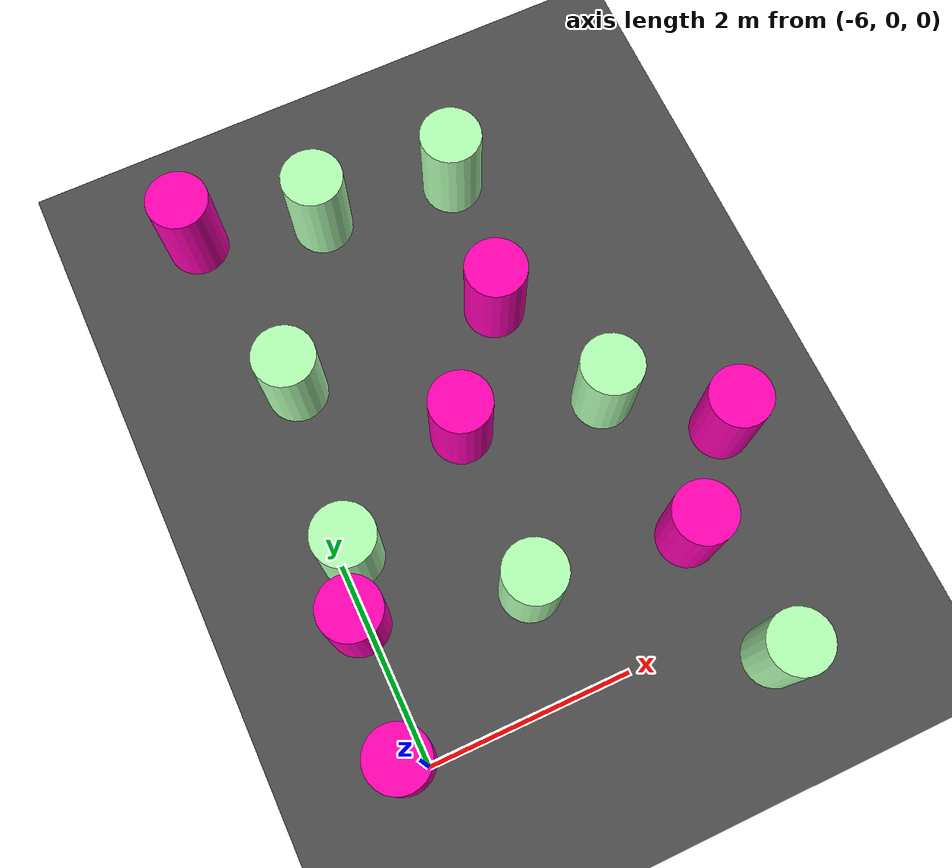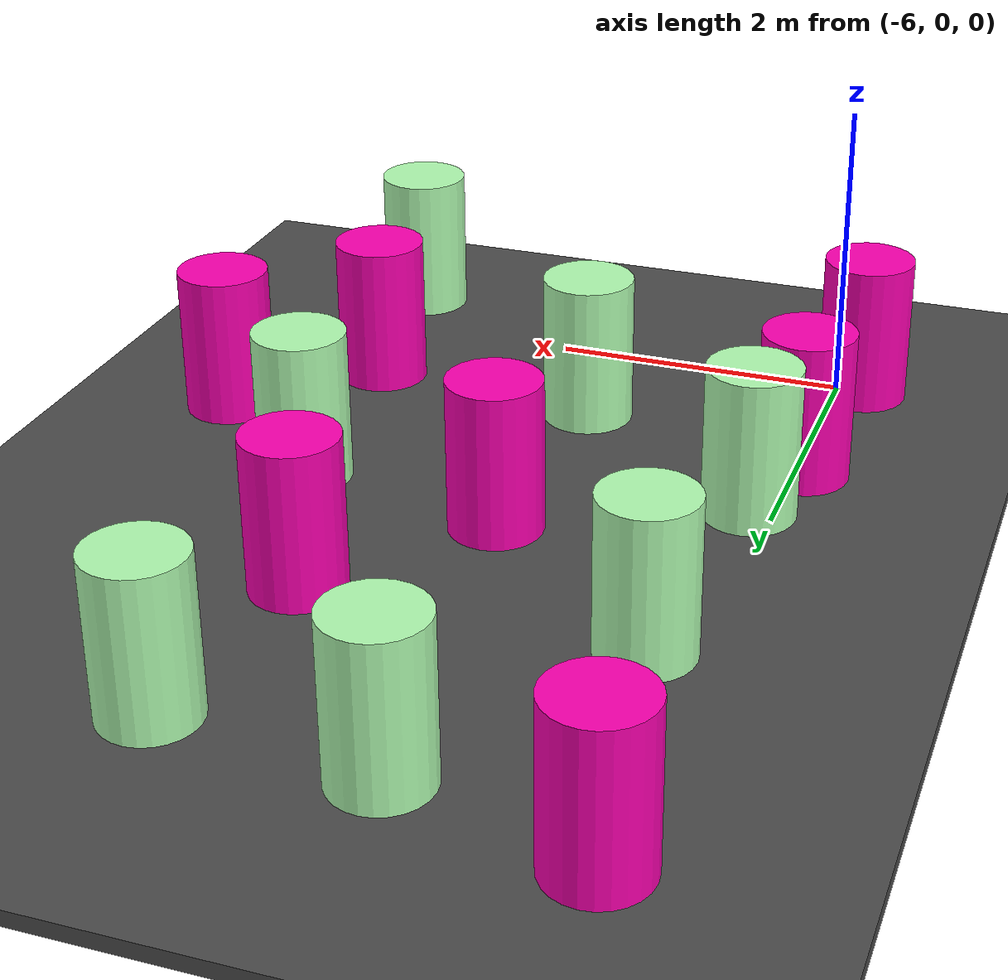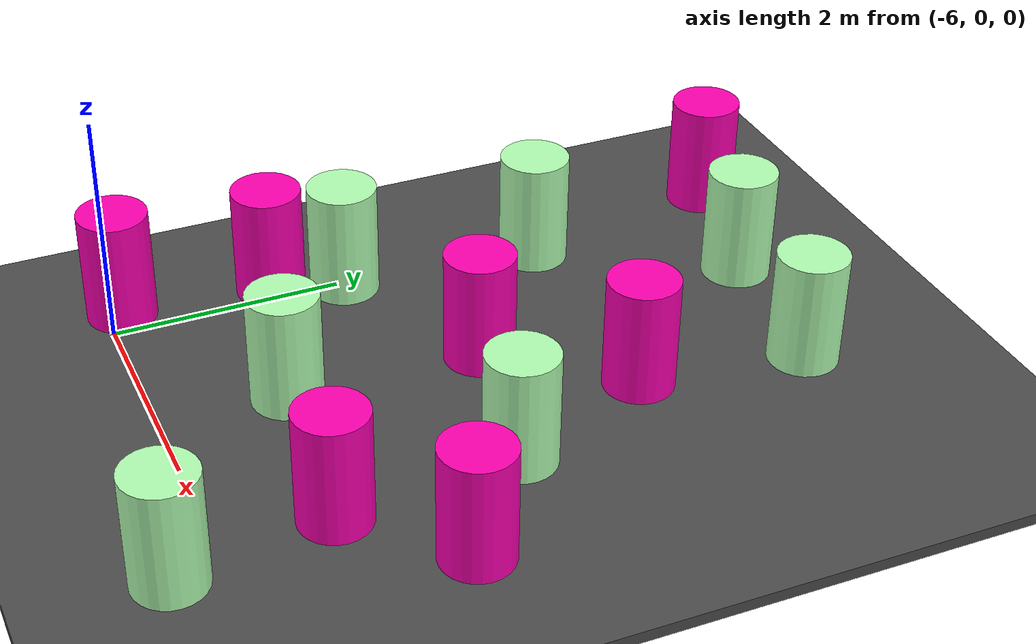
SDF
<sdf version="1.6">
 <world name="default">
  <model name="ground_plane">
   <static>1</static>
   <link name="link">
    <collision name="collision">
     <geometry><plane><normal>0 0 1</normal><size>100 100</size></plane></geometry>
     <surface>
      <contact><collide_bitmask>65535</collide_bitmask></contact>
      <friction><ode><mu>100</mu><mu2>50</mu2></ode></friction>
     </surface>
    </collision>
    <visual name="visual">
     <cast_shadows>0</cast_shadows>
     <geometry><plane><normal>0 0 1</normal><size>100 100</size></plane></geometry>
     <material>
      <script><uri>file://media/materials/scripts/gazebo.material</uri><name>Gazebo/Grey</name></script>
     </material>
    </visual>
   </link>
  </model>
  <model name="asphalt_plane">
   <static>1</static>
   <link name="link">
    <collision name="collision"><geometry><box><size>20 20 0.1</size></box></geometry></collision>
    <visual name="visual">
     <cast_shadows>0</cast_shadows>
     <geometry><box><size>20 20 0.1</size></box></geometry>
     <material>
      <script>
       <uri>model://asphalt_plane/materials/scripts</uri>
       <uri>model://asphalt_plane/materials/textures</uri>
       <name>vrc/asphalt</name>
      </script>
     </material>
    </visual>
   </link>
   <pose>0.075822 -0.052477 0 0 -0 0</pose>
  </model>
  <model name="red_barrel_3">
   <link name="link_1">
    <inertial>
     <mass>20</mass>
     <inertia><ixx>2.91667</ixx><ixy>0</ixy><ixz>0</ixz><iyy>2.91667</iyy><iyz>0</iyz><izz>2.5</izz></inertia>
    </inertial>
    <pose>0.092935 0.418257 0.5 0 -0 0</pose>
    <visual name="visual">
     <geometry><cylinder><radius>0.3</radius><length>1</length></cylinder></geometry>
     <material>
      <lighting>1</lighting>
      <script><uri>file://media/materials/scripts/gazebo.material</uri><name>Gazebo/Grey</name></script>
      <shader type="vertex"><normal_map>__default__</normal_map></shader>
      <ambient>0.9 0 0.3 1</ambient>
      <diffuse>1 0 0.7 1</diffuse>
      <specular>1 0 0.01 1</specular>
      <emissive>1 0 0 1</emissive>
     </material>
    </visual>
    <collision name="collision">
     <geometry><cylinder><radius>0.5</radius><length>1</length></cylinder></geometry>
     <surface>
      <friction>
       <ode><mu>1</mu><mu2>1</mu2><fdir1>0 0 0</fdir1><slip1>0</slip1><slip2>0</slip2></ode>
       <torsional>
        <coefficient>1</coefficient>
        <patch_radius>0</patch_radius>
        <surface_radius>0</surface_radius>
        <use_patch_radius>1</use_patch_radius>
        <ode><slip>0</slip></ode>
       </torsional>
      </friction>
      <bounce><restitution_coefficient>0</restitution_coefficient><threshold>1e+06</threshold></bounce>
      <contact>
       <collide_without_contact>0</collide_without_contact>
       <collide_without_contact_bitmask>1</collide_without_contact_bitmask>
       <collide_bitmask>1</collide_bitmask>
       <ode>
        <soft_cfm>0</soft_cfm>
        <soft_erp>0.2</soft_erp>
        <kp>1e+13</kp>
        <kd>1</kd>
        <max_vel>0.01</max_vel>
        <min_depth>0</min_depth>
       </ode>
       <bullet>
        <split_impulse>1</split_impulse>
        <split_impulse_penetration_threshold>-0.01</split_impulse_penetration_threshold>
        <soft_cfm>0</soft_cfm>
        <soft_erp>0.2</soft_erp>
        <kp>1e+13</kp>
        <kd>1</kd>
       </bullet>
      </contact>
     </surface>
    </collision>
   </link>
   <static>0</static>
   <pose>-2.25633 1.28408 0.050002 -1e-06 2e-06 -0.00198</pose>
  </model>
  <model name="red_barrel_7">
   <link name="link_1">
    <inertial>
     <mass>20</mass>
     <inertia><ixx>2.91667</ixx><ixy>0</ixy><ixz>0</ixz><iyy>2.91667</iyy><iyz>0</iyz><izz>2.5</izz></inertia>
    </inertial>
    <pose>0.092935 0.418257 0.5 0 -0 0</pose>
    <visual name="visual">
     <geometry><cylinder><radius>0.3</radius><length>1</length></cylinder></geometry>
     <material>
      <lighting>1</lighting>
      <script><uri>file://media/materials/scripts/gazebo.material</uri><name>Gazebo/Grey</name></script>
      <shader type="vertex"><normal_map>__default__</normal_map></shader>
      <ambient>0.9 0 0.3 1</ambient>
      <diffuse>1 0 0.7 1</diffuse>
      <specular>1 0 0.01 1</specular>
      <emissive>1 0 0 1</emissive>
     </material>
    </visual>
    <collision name="collision">
     <geometry><cylinder><radius>0.3</radius><length>1</length></cylinder></geometry>
     <surface>
      <friction>
       <ode><mu>1</mu><mu2>1</mu2><fdir1>0 0 0</fdir1><slip1>0</slip1><slip2>0</slip2></ode>
       <torsional>
        <coefficient>1</coefficient>
        <patch_radius>0</patch_radius>
        <surface_radius>0</surface_radius>
        <use_patch_radius>1</use_patch_radius>
        <ode><slip>0</slip></ode>
       </torsional>
      </friction>
      <bounce><restitution_coefficient>0</restitution_coefficient><threshold>1e+06</threshold></bounce>
      <contact>
       <collide_without_contact>0</collide_without_contact>
       <collide_without_contact_bitmask>1</collide_without_contact_bitmask>
       <collide_bitmask>1</collide_bitmask>
       <ode>
        <soft_cfm>0</soft_cfm>
        <soft_erp>0.2</soft_erp>
        <kp>1e+13</kp>
        <kd>1</kd>
        <max_vel>0.01</max_vel>
        <min_depth>0</min_depth>
       </ode>
       <bullet>
        <split_impulse>1</split_impulse>
        <split_impulse_penetration_threshold>-0.01</split_impulse_penetration_threshold>
        <soft_cfm>0</soft_cfm>
        <soft_erp>0.2</soft_erp>
        <kp>1e+13</kp>
        <kd>1</kd>
       </bullet>
      </contact>
     </surface>
    </collision>
   </link>
   <static>0</static>
   <pose>-6.28788 -0.286343 0.049991 0 -1e-06 -0.005763</pose>
  </model>
  <model name="green_barrel_6">
   <link name="link_1">
    <inertial>
     <mass>20</mass>
     <inertia><ixx>2.91667</ixx><ixy>0</ixy><ixz>0</ixz><iyy>2.91667</iyy><iyz>0</iyz><izz>2.5</izz></inertia>
    </inertial>
    <visual name="visual">
     <geometry><cylinder><radius>0.3</radius><length>1</length></cylinder></geometry>
     <material>
      <lighting>1</lighting>
      <script><uri>file://media/materials/scripts/gazebo.material</uri><name>Gazebo/Grey</name></script>
      <shader type="vertex"><normal_map>__default__</normal_map></shader>
      <ambient>0.3 1 0.3 1</ambient>
      <diffuse>0.7 1 0.7 1</diffuse>
      <specular>0.01 1 0.01 1</specular>
      <emissive>0 1 0 1</emissive>
     </material>
    </visual>
    <collision name="collision">
     <geometry><cylinder><radius>0.3</radius><length>1</length></cylinder></geometry>
     <surface>
      <friction>
       <ode><mu>1</mu><mu2>1</mu2><fdir1>0 0 0</fdir1><slip1>0</slip1><slip2>0</slip2></ode>
       <torsional>
        <coefficient>1</coefficient>
        <patch_radius>0</patch_radius>
        <surface_radius>0</surface_radius>
        <use_patch_radius>1</use_patch_radius>
        <ode><slip>0</slip></ode>
       </torsional>
      </friction>
      <bounce><restitution_coefficient>0</restitution_coefficient><threshold>1e+06</threshold></bounce>
      <contact>
       <collide_without_contact>0</collide_without_contact>
       <collide_without_contact_bitmask>1</collide_without_contact_bitmask>
       <collide_bitmask>1</collide_bitmask>
       <ode>
        <soft_cfm>0</soft_cfm>
        <soft_erp>0.2</soft_erp>
        <kp>1e+13</kp>
        <kd>1</kd>
        <max_vel>0.01</max_vel>
        <min_depth>0</min_depth>
       </ode>
       <bullet>
        <split_impulse>1</split_impulse>
        <split_impulse_penetration_threshold>-0.01</split_impulse_penetration_threshold>
        <soft_cfm>0</soft_cfm>
        <soft_erp>0.2</soft_erp>
        <kp>1e+13</kp>
        <kd>1</kd>
       </bullet>
      </contact>
     </surface>
    </collision>
   </link>
   <static>0</static>
   <pose>-2.74471 -0.415652 0.549999 4e-06 1e-06 0.015417</pose>
  </model>
  <model name="green_barrel_7">
   <link name="link_1">
    <inertial>
     <mass>20</mass>
     <inertia><ixx>2.91667</ixx><ixy>0</ixy><ixz>0</ixz><iyy>2.91667</iyy><iyz>0</iyz><izz>2.5</izz></inertia>
    </inertial>
    <visual name="visual">
     <geometry><cylinder><radius>0.3</radius><length>1</length></cylinder></geometry>
     <material>
      <lighting>1</lighting>
      <script><uri>file://media/materials/scripts/gazebo.material</uri><name>Gazebo/Grey</name></script>
      <shader type="vertex"><normal_map>__default__</normal_map></shader>
      <ambient>0.3 1 0.3 1</ambient>
      <diffuse>0.7 1 0.7 1</diffuse>
      <specular>0.01 1 0.01 1</specular>
      <emissive>0 1 0 1</emissive>
     </material>
    </visual>
    <collision name="collision">
     <geometry><cylinder><radius>0.3</radius><length>1</length></cylinder></geometry>
     <surface>
      <friction>
       <ode><mu>1</mu><mu2>1</mu2><fdir1>0 0 0</fdir1><slip1>0</slip1><slip2>0</slip2></ode>
       <torsional>
        <coefficient>1</coefficient>
        <patch_radius>0</patch_radius>
        <surface_radius>0</surface_radius>
        <use_patch_radius>1</use_patch_radius>
        <ode><slip>0</slip></ode>
       </torsional>
      </friction>
      <bounce><restitution_coefficient>0</restitution_coefficient><threshold>1e+06</threshold></bounce>
      <contact>
       <collide_without_contact>0</collide_without_contact>
       <collide_without_contact_bitmask>1</collide_without_contact_bitmask>
       <collide_bitmask>1</collide_bitmask>
       <ode>
        <soft_cfm>0</soft_cfm>
        <soft_erp>0.2</soft_erp>
        <kp>1e+13</kp>
        <kd>1</kd>
        <max_vel>0.01</max_vel>
        <min_depth>0</min_depth>
       </ode>
       <bullet>
        <split_impulse>1</split_impulse>
        <split_impulse_penetration_threshold>-0.01</split_impulse_penetration_threshold>
        <soft_cfm>0</soft_cfm>
        <soft_erp>0.2</soft_erp>
        <kp>1e+13</kp>
        <kd>1</kd>
       </bullet>
      </contact>
     </surface>
    </collision>
   </link>
   <static>0</static>
   <pose>-4.50441 1.05004 0.550001 4e-06 1e-06 0.015325</pose>
  </model>
  <model name="red_barrel_2">
   <link name="link_1">
    <inertial>
     <mass>20</mass>
     <inertia><ixx>2.91667</ixx><ixy>0</ixy><ixz>0</ixz><iyy>2.91667</iyy><iyz>0</iyz><izz>2.5</izz></inertia>
    </inertial>
    <pose>0.092935 0.418257 0.5 0 -0 0</pose>
    <visual name="visual">
     <geometry><cylinder><radius>0.3</radius><length>1</length></cylinder></geometry>
     <material>
      <lighting>1</lighting>
      <script><uri>file://media/materials/scripts/gazebo.material</uri><name>Gazebo/Grey</name></script>
      <shader type="vertex"><normal_map>__default__</normal_map></shader>
      <ambient>0.9 0 0.3 1</ambient>
      <diffuse>1 0 0.7 1</diffuse>
      <specular>1 0 0.01 1</specular>
      <emissive>1 0 0 1</emissive>
     </material>
    </visual>
    <collision name="collision">
     <geometry><cylinder><radius>0.3</radius><length>1</length></cylinder></geometry>
     <surface>
      <friction>
       <ode><mu>1</mu><mu2>1</mu2><fdir1>0 0 0</fdir1><slip1>0</slip1><slip2>0</slip2></ode>
       <torsional>
        <coefficient>1</coefficient>
        <patch_radius>0</patch_radius>
        <surface_radius>0</surface_radius>
        <use_patch_radius>1</use_patch_radius>
        <ode><slip>0</slip></ode>
       </torsional>
      </friction>
      <bounce><restitution_coefficient>0</restitution_coefficient><threshold>1e+06</threshold></bounce>
      <contact>
       <collide_without_contact>0</collide_without_contact>
       <collide_without_contact_bitmask>1</collide_without_contact_bitmask>
       <collide_bitmask>1</collide_bitmask>
       <ode>
        <soft_cfm>0</soft_cfm>
        <soft_erp>0.2</soft_erp>
        <kp>1e+13</kp>
        <kd>1</kd>
        <max_vel>0.01</max_vel>
        <min_depth>0</min_depth>
       </ode>
       <bullet>
        <split_impulse>1</split_impulse>
        <split_impulse_penetration_threshold>-0.01</split_impulse_penetration_threshold>
        <soft_cfm>0</soft_cfm>
        <soft_erp>0.2</soft_erp>
        <kp>1e+13</kp>
        <kd>1</kd>
       </bullet>
      </contact>
     </surface>
    </collision>
   </link>
   <static>0</static>
   <pose>-3.04066 0.480895 0.050003 -4e-06 -2e-06 -0.000325</pose>
  </model>
  <model name="red_barrel_8">
   <link name="link_1">
    <inertial>
     <mass>20</mass>
     <inertia><ixx>2.91667</ixx><ixy>0</ixy><ixz>0</ixz><iyy>2.91667</iyy><iyz>0</iyz><izz>2.5</izz></inertia>
    </inertial>
    <pose>0.092935 0.418257 0.5 0 -0 0</pose>
    <visual name="visual">
     <geometry><cylinder><radius>0.3</radius><length>1</length></cylinder></geometry>
     <material>
      <lighting>1</lighting>
      <script><uri>file://media/materials/scripts/gazebo.material</uri><name>Gazebo/Grey</name></script>
      <shader type="vertex"><normal_map>__default__</normal_map></shader>
      <ambient>0.9 0 0.3 1</ambient>
      <diffuse>1 0 0.7 1</diffuse>
      <specular>1 0 0.01 1</specular>
      <emissive>1 0 0 1</emissive>
     </material>
    </visual>
    <collision name="collision">
     <geometry><cylinder><radius>0.3</radius><length>1</length></cylinder></geometry>
     <surface>
      <friction>
       <ode><mu>1</mu><mu2>1</mu2><fdir1>0 0 0</fdir1><slip1>0</slip1><slip2>0</slip2></ode>
       <torsional>
        <coefficient>1</coefficient>
        <patch_radius>0</patch_radius>
        <surface_radius>0</surface_radius>
        <use_patch_radius>1</use_patch_radius>
        <ode><slip>0</slip></ode>
       </torsional>
      </friction>
      <bounce><restitution_coefficient>0</restitution_coefficient><threshold>1e+06</threshold></bounce>
      <contact>
       <collide_without_contact>0</collide_without_contact>
       <collide_without_contact_bitmask>1</collide_without_contact_bitmask>
       <collide_bitmask>1</collide_bitmask>
       <ode>
        <soft_cfm>0</soft_cfm>
        <soft_erp>0.2</soft_erp>
        <kp>1e+13</kp>
        <kd>1</kd>
        <max_vel>0.01</max_vel>
        <min_depth>0</min_depth>
       </ode>
       <bullet>
        <split_impulse>1</split_impulse>
        <split_impulse_penetration_threshold>-0.01</split_impulse_penetration_threshold>
        <soft_cfm>0</soft_cfm>
        <soft_erp>0.2</soft_erp>
        <kp>1e+13</kp>
        <kd>1</kd>
       </bullet>
      </contact>
     </surface>
    </collision>
   </link>
   <static>0</static>
   <pose>-6.16079 1.0031 0.04999 0 -0 -0.000779</pose>
  </model>
  <model name="green_barrel_12">
   <link name="link_1">
    <inertial>
     <mass>20</mass>
     <inertia><ixx>2.91667</ixx><ixy>0</ixy><ixz>0</ixz><iyy>2.91667</iyy><iyz>0</iyz><izz>2.5</izz></inertia>
    </inertial>
    <visual name="visual">
     <geometry><cylinder><radius>0.3</radius><length>1</length></cylinder></geometry>
     <material>
      <lighting>1</lighting>
      <script><uri>file://media/materials/scripts/gazebo.material</uri><name>Gazebo/Grey</name></script>
      <shader type="vertex"><normal_map>__default__</normal_map></shader>
      <ambient>0.3 1 0.3 1</ambient>
      <diffuse>0.7 1 0.7 1</diffuse>
      <specular>0.01 1 0.01 1</specular>
      <emissive>0 1 0 1</emissive>
     </material>
    </visual>
    <collision name="collision">
     <geometry><cylinder><radius>0.3</radius><length>1</length></cylinder></geometry>
     <surface>
      <friction>
       <ode><mu>1</mu><mu2>1</mu2><fdir1>0 0 0</fdir1><slip1>0</slip1><slip2>0</slip2></ode>
       <torsional>
        <coefficient>1</coefficient>
        <patch_radius>0</patch_radius>
        <surface_radius>0</surface_radius>
        <use_patch_radius>1</use_patch_radius>
        <ode><slip>0</slip></ode>
       </torsional>
      </friction>
      <bounce><restitution_coefficient>0</restitution_coefficient><threshold>1e+06</threshold></bounce>
      <contact>
       <collide_without_contact>0</collide_without_contact>
       <collide_without_contact_bitmask>1</collide_without_contact_bitmask>
       <collide_bitmask>1</collide_bitmask>
       <ode>
        <soft_cfm>0</soft_cfm>
        <soft_erp>0.2</soft_erp>
        <kp>1e+13</kp>
        <kd>1</kd>
        <max_vel>0.01</max_vel>
        <min_depth>0</min_depth>
       </ode>
       <bullet>
        <split_impulse>1</split_impulse>
        <split_impulse_penetration_threshold>-0.01</split_impulse_penetration_threshold>
        <soft_cfm>0</soft_cfm>
        <soft_erp>0.2</soft_erp>
        <kp>1e+13</kp>
        <kd>1</kd>
       </bullet>
      </contact>
     </surface>
    </collision>
   </link>
   <static>0</static>
   <pose>-5.8686 2.0285 0.550001 -4e-06 -2e-06 0.015433</pose>
  </model>
  <model name="red_barrel_5">
   <link name="link_1">
    <inertial>
     <mass>20</mass>
     <inertia><ixx>2.91667</ixx><ixy>0</ixy><ixz>0</ixz><iyy>2.91667</iyy><iyz>0</iyz><izz>2.5</izz></inertia>
    </inertial>
    <pose>0.092935 0.418257 0.5 0 -0 0</pose>
    <visual name="visual">
     <geometry><cylinder><radius>0.3</radius><length>1</length></cylinder></geometry>
     <material>
      <lighting>1</lighting>
      <script><uri>file://media/materials/scripts/gazebo.material</uri><name>Gazebo/Grey</name></script>
      <shader type="vertex"><normal_map>__default__</normal_map></shader>
      <ambient>0.9 0 0.3 1</ambient>
      <diffuse>1 0 0.7 1</diffuse>
      <specular>1 0 0.01 1</specular>
      <emissive>1 0 0 1</emissive>
     </material>
    </visual>
    <collision name="collision">
     <geometry><cylinder><radius>0.3</radius><length>1</length></cylinder></geometry>
     <surface>
      <friction>
       <ode><mu>1</mu><mu2>1</mu2><fdir1>0 0 0</fdir1><slip1>0</slip1><slip2>0</slip2></ode>
       <torsional>
        <coefficient>1</coefficient>
        <patch_radius>0</patch_radius>
        <surface_radius>0</surface_radius>
        <use_patch_radius>1</use_patch_radius>
        <ode><slip>0</slip></ode>
       </torsional>
      </friction>
      <bounce><restitution_coefficient>0</restitution_coefficient><threshold>1e+06</threshold></bounce>
      <contact>
       <collide_without_contact>0</collide_without_contact>
       <collide_without_contact_bitmask>1</collide_without_contact_bitmask>
       <collide_bitmask>1</collide_bitmask>
       <ode>
        <soft_cfm>0</soft_cfm>
        <soft_erp>0.2</soft_erp>
        <kp>1e+13</kp>
        <kd>1</kd>
        <max_vel>0.01</max_vel>
        <min_depth>0</min_depth>
       </ode>
       <bullet>
        <split_impulse>1</split_impulse>
        <split_impulse_penetration_threshold>-0.01</split_impulse_penetration_threshold>
        <soft_cfm>0</soft_cfm>
        <soft_erp>0.2</soft_erp>
        <kp>1e+13</kp>
        <kd>1</kd>
       </bullet>
      </contact>
     </surface>
    </collision>
   </link>
   <static>0</static>
   <pose>-4.54378 2.27941 0.049997 5e-06 2e-06 -0.00032</pose>
  </model>
  <model name="green_barrel_11">
   <link name="link_1">
    <inertial>
     <mass>20</mass>
     <inertia><ixx>2.91667</ixx><ixy>0</ixy><ixz>0</ixz><iyy>2.91667</iyy><iyz>0</iyz><izz>2.5</izz></inertia>
    </inertial>
    <visual name="visual">
     <geometry><cylinder><radius>0.3</radius><length>1</length></cylinder></geometry>
     <material>
      <lighting>1</lighting>
      <script><uri>file://media/materials/scripts/gazebo.material</uri><name>Gazebo/Grey</name></script>
      <shader type="vertex"><normal_map>__default__</normal_map></shader>
      <ambient>0.3 1 0.3 1</ambient>
      <diffuse>0.7 1 0.7 1</diffuse>
      <specular>0.01 1 0.01 1</specular>
      <emissive>0 1 0 1</emissive>
     </material>
    </visual>
    <collision name="collision">
     <geometry><cylinder><radius>0.3</radius><length>1</length></cylinder></geometry>
     <surface>
      <friction>
       <ode><mu>1</mu><mu2>1</mu2><fdir1>0 0 0</fdir1><slip1>0</slip1><slip2>0</slip2></ode>
       <torsional>
        <coefficient>1</coefficient>
        <patch_radius>0</patch_radius>
        <surface_radius>0</surface_radius>
        <use_patch_radius>1</use_patch_radius>
        <ode><slip>0</slip></ode>
       </torsional>
      </friction>
      <bounce><restitution_coefficient>0</restitution_coefficient><threshold>1e+06</threshold></bounce>
      <contact>
       <collide_without_contact>0</collide_without_contact>
       <collide_without_contact_bitmask>1</collide_without_contact_bitmask>
       <collide_bitmask>1</collide_bitmask>
       <ode>
        <soft_cfm>0</soft_cfm>
        <soft_erp>0.2</soft_erp>
        <kp>1e+13</kp>
        <kd>1</kd>
        <max_vel>0.01</max_vel>
        <min_depth>0</min_depth>
       </ode>
       <bullet>
        <split_impulse>1</split_impulse>
        <split_impulse_penetration_threshold>-0.01</split_impulse_penetration_threshold>
        <soft_cfm>0</soft_cfm>
        <soft_erp>0.2</soft_erp>
        <kp>1e+13</kp>
        <kd>1</kd>
       </bullet>
      </contact>
     </surface>
    </collision>
   </link>
   <static>0</static>
   <pose>-5.71636 3.75427 0.550001 5e-06 1e-06 0.015745</pose>
  </model>
  <model name="green_barrel_8">
   <link name="link_1">
    <inertial>
     <mass>20</mass>
     <inertia><ixx>2.91667</ixx><ixy>0</ixy><ixz>0</ixz><iyy>2.91667</iyy><iyz>0</iyz><izz>2.5</izz></inertia>
    </inertial>
    <visual name="visual">
     <geometry><cylinder><radius>0.3</radius><length>1</length></cylinder></geometry>
     <material>
      <lighting>1</lighting>
      <script><uri>file://media/materials/scripts/gazebo.material</uri><name>Gazebo/Grey</name></script>
      <shader type="vertex"><normal_map>__default__</normal_map></shader>
      <ambient>0.3 1 0.3 1</ambient>
      <diffuse>0.7 1 0.7 1</diffuse>
      <specular>0.01 1 0.01 1</specular>
      <emissive>0 1 0 1</emissive>
     </material>
    </visual>
    <collision name="collision">
     <geometry><cylinder><radius>0.3</radius><length>1</length></cylinder></geometry>
     <surface>
      <friction>
       <ode><mu>1</mu><mu2>1</mu2><fdir1>0 0 0</fdir1><slip1>0</slip1><slip2>0</slip2></ode>
       <torsional>
        <coefficient>1</coefficient>
        <patch_radius>0</patch_radius>
        <surface_radius>0</surface_radius>
        <use_patch_radius>1</use_patch_radius>
        <ode><slip>0</slip></ode>
       </torsional>
      </friction>
      <bounce><restitution_coefficient>0</restitution_coefficient><threshold>1e+06</threshold></bounce>
      <contact>
       <collide_without_contact>0</collide_without_contact>
       <collide_without_contact_bitmask>1</collide_without_contact_bitmask>
       <collide_bitmask>1</collide_bitmask>
       <ode>
        <soft_cfm>0</soft_cfm>
        <soft_erp>0.2</soft_erp>
        <kp>1e+13</kp>
        <kd>1</kd>
        <max_vel>0.01</max_vel>
        <min_depth>0</min_depth>
       </ode>
       <bullet>
        <split_impulse>1</split_impulse>
        <split_impulse_penetration_threshold>-0.01</split_impulse_penetration_threshold>
        <soft_cfm>0</soft_cfm>
        <soft_erp>0.2</soft_erp>
        <kp>1e+13</kp>
        <kd>1</kd>
       </bullet>
      </contact>
     </surface>
    </collision>
   </link>
   <static>0</static>
   <pose>-3.0645 2.44845 0.550001 -3e-06 -1e-06 0.015739</pose>
  </model>
  <model name="red_barrel_4">
   <link name="link_1">
    <inertial>
     <mass>20</mass>
     <inertia><ixx>2.91667</ixx><ixy>0</ixy><ixz>0</ixz><iyy>2.91667</iyy><iyz>0</iyz><izz>2.5</izz></inertia>
    </inertial>
    <pose>0.092935 0.418257 0.5 0 -0 0</pose>
    <visual name="visual">
     <geometry><cylinder><radius>0.3</radius><length>1</length></cylinder></geometry>
     <material>
      <lighting>1</lighting>
      <script><uri>file://media/materials/scripts/gazebo.material</uri><name>Gazebo/Grey</name></script>
      <shader type="vertex"><normal_map>__default__</normal_map></shader>
      <ambient>0.9 0 0.3 1</ambient>
      <diffuse>1 0 0.7 1</diffuse>
      <specular>1 0 0.01 1</specular>
      <emissive>1 0 0 1</emissive>
     </material>
    </visual>
    <collision name="collision">
     <geometry><cylinder><radius>0.3</radius><length>1</length></cylinder></geometry>
     <surface>
      <friction>
       <ode><mu>1</mu><mu2>1</mu2><fdir1>0 0 0</fdir1><slip1>0</slip1><slip2>0</slip2></ode>
       <torsional>
        <coefficient>1</coefficient>
        <patch_radius>0</patch_radius>
        <surface_radius>0</surface_radius>
        <use_patch_radius>1</use_patch_radius>
        <ode><slip>0</slip></ode>
       </torsional>
      </friction>
      <bounce><restitution_coefficient>0</restitution_coefficient><threshold>1e+06</threshold></bounce>
      <contact>
       <collide_without_contact>0</collide_without_contact>
       <collide_without_contact_bitmask>1</collide_without_contact_bitmask>
       <collide_bitmask>1</collide_bitmask>
       <ode>
        <soft_cfm>0</soft_cfm>
        <soft_erp>0.2</soft_erp>
        <kp>1e+13</kp>
        <kd>1</kd>
        <max_vel>0.01</max_vel>
        <min_depth>0</min_depth>
       </ode>
       <bullet>
        <split_impulse>1</split_impulse>
        <split_impulse_penetration_threshold>-0.01</split_impulse_penetration_threshold>
        <soft_cfm>0</soft_cfm>
        <soft_erp>0.2</soft_erp>
        <kp>1e+13</kp>
        <kd>1</kd>
       </bullet>
      </contact>
     </surface>
    </collision>
   </link>
   <static>0</static>
   <pose>-3.7075 3.32195 0.04999 1e-06 -0 -0.000135</pose>
  </model>
  <model name="green_barrel_9">
   <link name="link_1">
    <inertial>
     <mass>20</mass>
     <inertia><ixx>2.91667</ixx><ixy>0</ixy><ixz>0</ixz><iyy>2.91667</iyy><iyz>0</iyz><izz>2.5</izz></inertia>
    </inertial>
    <visual name="visual">
     <geometry><cylinder><radius>0.3</radius><length>1</length></cylinder></geometry>
     <material>
      <lighting>1</lighting>
      <script><uri>file://media/materials/scripts/gazebo.material</uri><name>Gazebo/Grey</name></script>
      <shader type="vertex"><normal_map>__default__</normal_map></shader>
      <ambient>0.3 1 0.3 1</ambient>
      <diffuse>0.7 1 0.7 1</diffuse>
      <specular>0.01 1 0.01 1</specular>
      <emissive>0 1 0 1</emissive>
     </material>
    </visual>
    <collision name="collision">
     <geometry><cylinder><radius>0.3</radius><length>1</length></cylinder></geometry>
     <surface>
      <friction>
       <ode><mu>1</mu><mu2>1</mu2><fdir1>0 0 0</fdir1><slip1>0</slip1><slip2>0</slip2></ode>
       <torsional>
        <coefficient>1</coefficient>
        <patch_radius>0</patch_radius>
        <surface_radius>0</surface_radius>
        <use_patch_radius>1</use_patch_radius>
        <ode><slip>0</slip></ode>
       </torsional>
      </friction>
      <bounce><restitution_coefficient>0</restitution_coefficient><threshold>1e+06</threshold></bounce>
      <contact>
       <collide_without_contact>0</collide_without_contact>
       <collide_without_contact_bitmask>1</collide_without_contact_bitmask>
       <collide_bitmask>1</collide_bitmask>
       <ode>
        <soft_cfm>0</soft_cfm>
        <soft_erp>0.2</soft_erp>
        <kp>1e+13</kp>
        <kd>1</kd>
        <max_vel>0.01</max_vel>
        <min_depth>0</min_depth>
       </ode>
       <bullet>
        <split_impulse>1</split_impulse>
        <split_impulse_penetration_threshold>-0.01</split_impulse_penetration_threshold>
        <soft_cfm>0</soft_cfm>
        <soft_erp>0.2</soft_erp>
        <kp>1e+13</kp>
        <kd>1</kd>
       </bullet>
      </contact>
     </surface>
    </collision>
   </link>
   <static>0</static>
   <pose>-3.42556 5.16179 0.549999 -3e-06 -1e-06 0.015799</pose>
  </model>
  <model name="green_barrel_10">
   <link name="link_1">
    <inertial>
     <mass>20</mass>
     <inertia><ixx>2.91667</ixx><ixy>0</ixy><ixz>0</ixz><iyy>2.91667</iyy><iyz>0</iyz><izz>2.5</izz></inertia>
    </inertial>
    <visual name="visual">
     <geometry><cylinder><radius>0.3</radius><length>1</length></cylinder></geometry>
     <material>
      <lighting>1</lighting>
      <script><uri>file://media/materials/scripts/gazebo.material</uri><name>Gazebo/Grey</name></script>
      <shader type="vertex"><normal_map>__default__</normal_map></shader>
      <ambient>0.3 1 0.3 1</ambient>
      <diffuse>0.7 1 0.7 1</diffuse>
      <specular>0.01 1 0.01 1</specular>
      <emissive>0 1 0 1</emissive>
     </material>
    </visual>
    <collision name="collision">
     <geometry><cylinder><radius>0.3</radius><length>1</length></cylinder></geometry>
     <surface>
      <friction>
       <ode><mu>1</mu><mu2>1</mu2><fdir1>0 0 0</fdir1><slip1>0</slip1><slip2>0</slip2></ode>
       <torsional>
        <coefficient>1</coefficient>
        <patch_radius>0</patch_radius>
        <surface_radius>0</surface_radius>
        <use_patch_radius>1</use_patch_radius>
        <ode><slip>0</slip></ode>
       </torsional>
      </friction>
      <bounce><restitution_coefficient>0</restitution_coefficient><threshold>1e+06</threshold></bounce>
      <contact>
       <collide_without_contact>0</collide_without_contact>
       <collide_without_contact_bitmask>1</collide_without_contact_bitmask>
       <collide_bitmask>1</collide_bitmask>
       <ode>
        <soft_cfm>0</soft_cfm>
        <soft_erp>0.2</soft_erp>
        <kp>1e+13</kp>
        <kd>1</kd>
        <max_vel>0.01</max_vel>
        <min_depth>0</min_depth>
       </ode>
       <bullet>
        <split_impulse>1</split_impulse>
        <split_impulse_penetration_threshold>-0.01</split_impulse_penetration_threshold>
        <soft_cfm>0</soft_cfm>
        <soft_erp>0.2</soft_erp>
        <kp>1e+13</kp>
        <kd>1</kd>
       </bullet>
      </contact>
     </surface>
    </collision>
   </link>
   <static>0</static>
   <pose>-4.79947 5.29963 0.549998 4e-06 -4e-06 0.015831</pose>
  </model>
  <model name="red_barrel_6">
   <link name="link_1">
    <inertial>
     <mass>20</mass>
     <inertia><ixx>2.91667</ixx><ixy>0</ixy><ixz>0</ixz><iyy>2.91667</iyy><iyz>0</iyz><izz>2.5</izz></inertia>
    </inertial>
    <pose>0.092935 0.418257 0.5 0 -0 0</pose>
    <visual name="visual">
     <geometry><cylinder><radius>0.3</radius><length>1</length></cylinder></geometry>
     <material>
      <lighting>1</lighting>
      <script><uri>file://media/materials/scripts/gazebo.material</uri><name>Gazebo/Grey</name></script>
      <shader type="vertex"><normal_map>__default__</normal_map></shader>
      <ambient>0.9 0 0.3 1</ambient>
      <diffuse>1 0 0.7 1</diffuse>
      <specular>1 0 0.01 1</specular>
      <emissive>1 0 0 1</emissive>
     </material>
    </visual>
    <collision name="collision">
     <geometry><cylinder><radius>0.3</radius><length>1</length></cylinder></geometry>
     <surface>
      <friction>
       <ode><mu>1</mu><mu2>1</mu2><fdir1>0 0 0</fdir1><slip1>0</slip1><slip2>0</slip2></ode>
       <torsional>
        <coefficient>1</coefficient>
        <patch_radius>0</patch_radius>
        <surface_radius>0</surface_radius>
        <use_patch_radius>1</use_patch_radius>
        <ode><slip>0</slip></ode>
       </torsional>
      </friction>
      <bounce><restitution_coefficient>0</restitution_coefficient><threshold>1e+06</threshold></bounce>
      <contact>
       <collide_without_contact>0</collide_without_contact>
       <collide_without_contact_bitmask>1</collide_without_contact_bitmask>
       <collide_bitmask>1</collide_bitmask>
       <ode>
        <soft_cfm>0</soft_cfm>
        <soft_erp>0.2</soft_erp>
        <kp>1e+13</kp>
        <kd>1</kd>
        <max_vel>0.01</max_vel>
        <min_depth>0</min_depth>
       </ode>
       <bullet>
        <split_impulse>1</split_impulse>
        <split_impulse_penetration_threshold>-0.01</split_impulse_penetration_threshold>
        <soft_cfm>0</soft_cfm>
        <soft_erp>0.2</soft_erp>
        <kp>1e+13</kp>
        <kd>1</kd>
       </bullet>
      </contact>
     </surface>
    </collision>
   </link>
   <static>0</static>
   <pose>-6.12698 5.1916 0.05 2e-06 -0 1.7e-05</pose>
  </model>
 </world>
</sdf>
